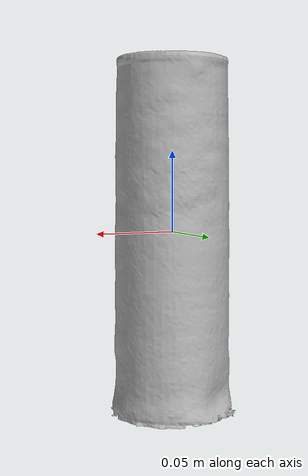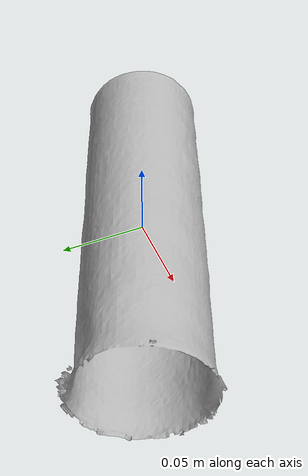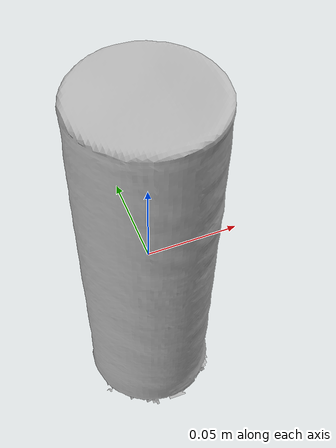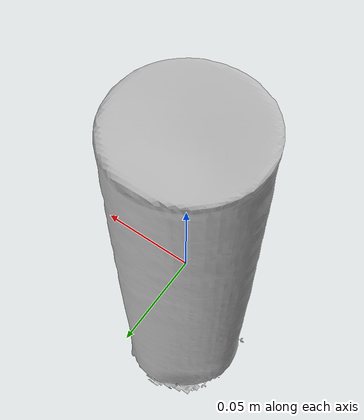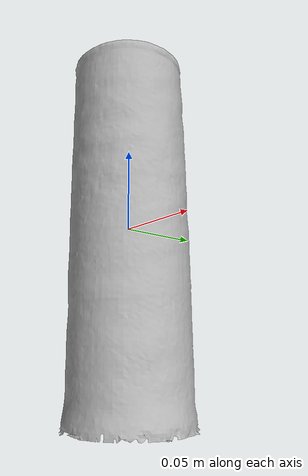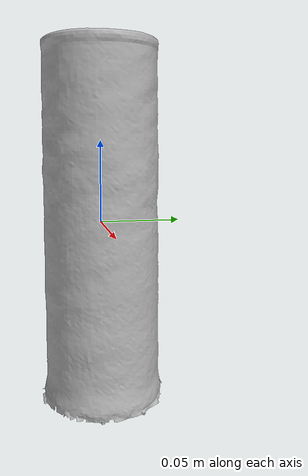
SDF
<?xml version='1.0'?>
<sdf version="1.4">
  <model name="chips_can">
    <static>false</static>
    <link name="link">
      <inertial>
        <pose>0.0001673128414577634 -0.00023701442444062752 -0.0 0.0 1.5708 0 0.0</pose>
        <mass>0.55</mass>
        <inertia>
          <ixx>0.000881591246944398</ixx>
          <ixy>-2.738495978054539e-22</ixy>
          <ixz>1.627419279934661e-20</ixz>
          <iyy>0.003178821659115613</iyy>
          <iyz>-4.502275336900622e-22</iyz>
          <izz>0.00319845129022663</izz>
        </inertia>
      </inertial>
      <collision name="collision">
        <geometry>
          <mesh>
            <!-- Use a downsampled mesh for collisions -->
            <uri>model://chips_can/meshes/chips_can.stl</uri>
            <scale>0.94 0.94 0.94</scale>
	        </mesh>
        </geometry>
        <surface>
      <friction>
          <ode>
            <mu>0.8</mu>
            <mu2>0.6</mu2>
          </ode>
        </friction>
      </surface>
      </collision>
      <visual name="visual">
        <geometry>
          <mesh>
            <uri>model://chips_can/meshes/textured_simple.obj</uri>
            <scale>0.92 0.92 0.92</scale>
	        </mesh>
        </geometry>
        <material>
          <script>
            <uri>model://chips_can/chips_can.material</uri>
            <name>chips_can</name>
          </script>
        </material>
      </visual>
      <surface>
        <friction>
          <ode>
            <mu>1.0</mu> <!-- Static friction coefficient -->
            <mu2>1.0</mu2> <!-- Dynamic friction coefficient -->
            <slip1>0.0</slip1> <!-- Slip compliance, set to 0 for no slip -->
            <slip2>0.0</slip2> <!-- Slip compliance, set to 0 for no slip -->
          </ode>
        </friction>
      </surface>
    </link>
  </model>
</sdf>
